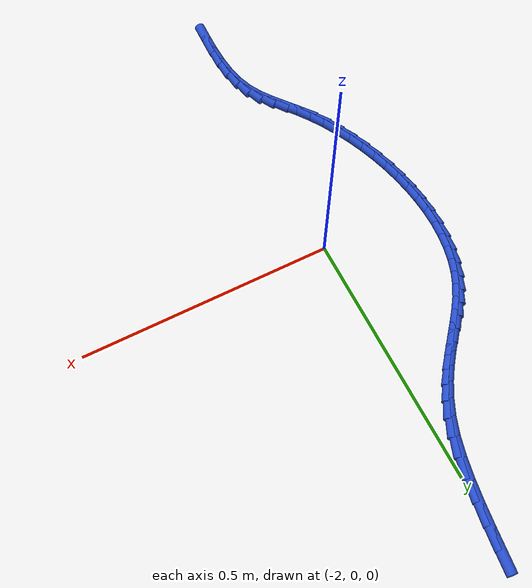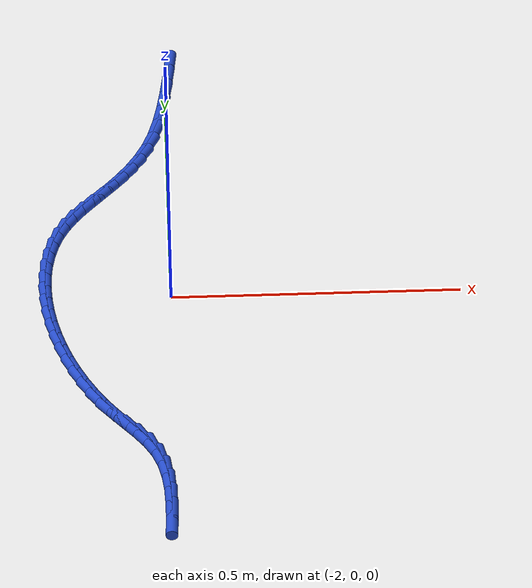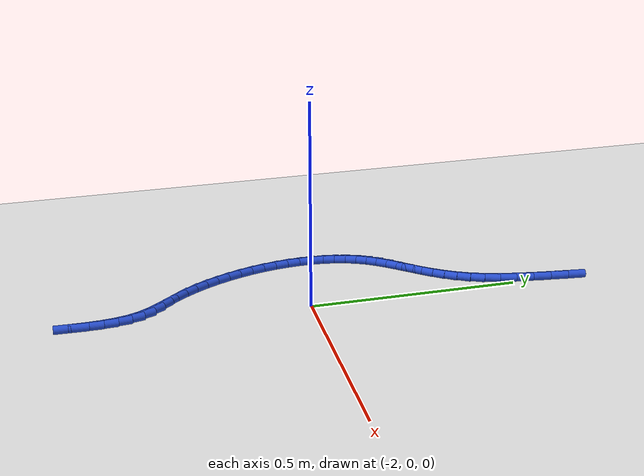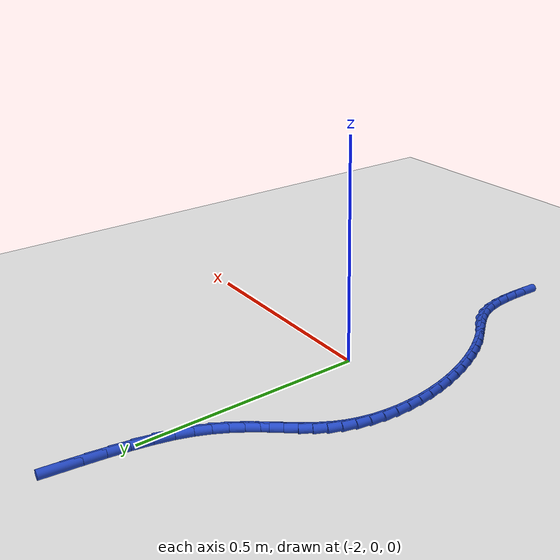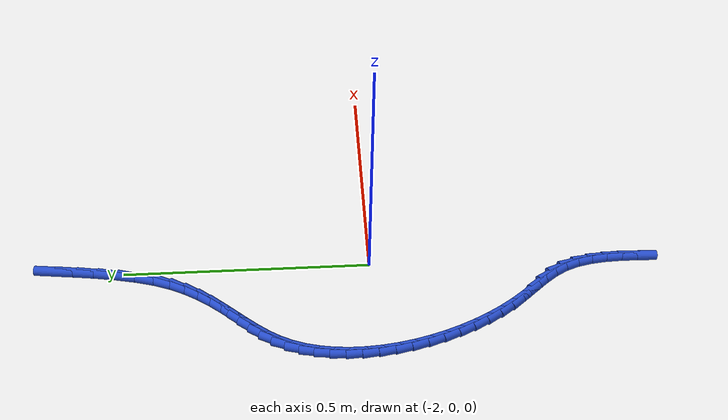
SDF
<sdf version="1.6">
 <world name="default">
  <model name="ground_plane">
   <static>1</static>
   <link name="link">
    <collision name="collision">
     <geometry><plane><normal>0 0 1</normal><size>100 100</size></plane></geometry>
     <surface><friction><ode><mu>100</mu><mu2>50</mu2></ode></friction></surface>
    </collision>
    <visual name="visual">
     <cast_shadows>0</cast_shadows>
     <geometry><plane><normal>0 0 1</normal><size>100 100</size></plane></geometry>
     <material>
      <script><uri>file://media/materials/scripts/gazebo.material</uri><name>Gazebo/WhiteGlow</name></script>
     </material>
    </visual>
   </link>
  </model>
  <model name="line">
   <link name="link_102">
    <pose>-1.9905995910423677 0.6393069410280278 0.01 0 1.57 1.4605820366852915</pose>
    <collision name="collision">
     <geometry><cylinder><radius>0.01</radius><length>0.08</length></cylinder></geometry>
    </collision>
    <visual name="visual">
     <material>
      <script><name>Gazebo/Blue</name><uri>file://media/materials/scripts/gazebo.material</uri></script>
     </material>
     <geometry><cylinder><radius>0.01</radius><length>0.08</length></cylinder></geometry>
    </visual>
   </link>
   <link name="link_103">
    <pose>-1.995306426203486 0.5967737864644644 0.01 0 1.57 1.4446666506424002</pose>
    <collision name="collision">
     <geometry><cylinder><radius>0.01</radius><length>0.08</length></cylinder></geometry>
    </collision>
    <visual name="visual">
     <material>
      <script><name>Gazebo/Blue</name><uri>file://media/materials/scripts/gazebo.material</uri></script>
     </material>
     <geometry><cylinder><radius>0.01</radius><length>0.08</length></cylinder></geometry>
    </visual>
   </link>
   <link name="link_104">
    <pose>-2.0007367771054243 0.5539486252482262 0.01 0 1.57 1.416670662012935</pose>
    <collision name="collision">
     <geometry><cylinder><radius>0.01</radius><length>0.08</length></cylinder></geometry>
    </collision>
    <visual name="visual">
     <material>
      <script><name>Gazebo/Blue</name><uri>file://media/materials/scripts/gazebo.material</uri></script>
     </material>
     <geometry><cylinder><radius>0.01</radius><length>0.08</length></cylinder></geometry>
    </visual>
   </link>
   <link name="link_105">
    <pose>-2.007282978929513 0.511812325876151 0.01 0 1.57 1.3743258674602057</pose>
    <collision name="collision">
     <geometry><cylinder><radius>0.01</radius><length>0.08</length></cylinder></geometry>
    </collision>
    <visual name="visual">
     <material>
      <script><name>Gazebo/Blue</name><uri>file://media/materials/scripts/gazebo.material</uri></script>
     </material>
     <geometry><cylinder><radius>0.01</radius><length>0.08</length></cylinder></geometry>
    </visual>
   </link>
   <link name="link_106">
    <pose>-2.015337366857081 0.47134575684507535 0.01 0 1.57 1.3133900582813482</pose>
    <collision name="collision">
     <geometry><cylinder><radius>0.01</radius><length>0.08</length></cylinder></geometry>
    </collision>
    <visual name="visual">
     <material>
      <script><name>Gazebo/Blue</name><uri>file://media/materials/scripts/gazebo.material</uri></script>
     </material>
     <geometry><cylinder><radius>0.01</radius><length>0.08</length></cylinder></geometry>
    </visual>
   </link>
   <link name="link_107">
    <pose>-2.0252922760694574 0.43352978665183756 0.01 0 1.57 1.228367231004638</pose>
    <collision name="collision">
     <geometry><cylinder><radius>0.01</radius><length>0.08</length></cylinder></geometry>
    </collision>
    <visual name="visual">
     <material>
      <script><name>Gazebo/Blue</name><uri>file://media/materials/scripts/gazebo.material</uri></script>
     </material>
     <geometry><cylinder><radius>0.01</radius><length>0.08</length></cylinder></geometry>
    </visual>
   </link>
   <link name="link_108">
    <pose>-2.0375019896902393 0.39927827750984257 0.01 0 1.57 1.1335278598114342</pose>
    <collision name="collision">
     <geometry><cylinder><radius>0.01</radius><length>0.08</length></cylinder></geometry>
    </collision>
    <visual name="visual">
     <material>
      <script><name>Gazebo/Blue</name><uri>file://media/materials/scripts/gazebo.material</uri></script>
     </material>
     <geometry><cylinder><radius>0.01</radius><length>0.08</length></cylinder></geometry>
    </visual>
   </link>
   <link name="link_109">
    <pose>-2.0518263736472595 0.368634467000668 0.01 0 1.57 1.0467177001737313</pose>
    <collision name="collision">
     <geometry><cylinder><radius>0.01</radius><length>0.08</length></cylinder></geometry>
    </collision>
    <visual name="visual">
     <material>
      <script><name>Gazebo/Blue</name><uri>file://media/materials/scripts/gazebo.material</uri></script>
     </material>
     <geometry><cylinder><radius>0.01</radius><length>0.08</length></cylinder></geometry>
    </visual>
   </link>
   <link name="link_110">
    <pose>-2.067779716604559 0.34103306193343297 0.01 0 1.57 0.973714620342271</pose>
    <collision name="collision">
     <geometry><cylinder><radius>0.01</radius><length>0.08</length></cylinder></geometry>
    </collision>
    <visual name="visual">
     <material>
      <script><name>Gazebo/Blue</name><uri>file://media/materials/scripts/gazebo.material</uri></script>
     </material>
     <geometry><cylinder><radius>0.01</radius><length>0.08</length></cylinder></geometry>
    </visual>
   </link>
   <link name="link_111">
    <pose>-2.0848692254175347 0.3158962986831871 0.01 0 1.57 0.9192113612939791</pose>
    <collision name="collision">
     <geometry><cylinder><radius>0.01</radius><length>0.08</length></cylinder></geometry>
    </collision>
    <visual name="visual">
     <material>
      <script><name>Gazebo/Blue</name><uri>file://media/materials/scripts/gazebo.material</uri></script>
     </material>
     <geometry><cylinder><radius>0.01</radius><length>0.08</length></cylinder></geometry>
    </visual>
   </link>
   <link name="link_112">
    <pose>-2.102602106941586 0.29264641362497995 0.01 0 1.57 0.886928268180433</pose>
    <collision name="collision">
     <geometry><cylinder><radius>0.01</radius><length>0.08</length></cylinder></geometry>
    </collision>
    <visual name="visual">
     <material>
      <script><name>Gazebo/Blue</name><uri>file://media/materials/scripts/gazebo.material</uri></script>
     </material>
     <geometry><cylinder><radius>0.01</radius><length>0.08</length></cylinder></geometry>
    </visual>
   </link>
   <link name="link_113">
    <pose>-2.1204855680321106 0.27070564313386114 0.01 0 1.57 0.8797778065302724</pose>
    <collision name="collision">
     <geometry><cylinder><radius>0.01</radius><length>0.08</length></cylinder></geometry>
    </collision>
    <visual name="visual">
     <material>
      <script><name>Gazebo/Blue</name><uri>file://media/materials/scripts/gazebo.material</uri></script>
     </material>
     <geometry><cylinder><radius>0.01</radius><length>0.08</length></cylinder></geometry>
    </visual>
   </link>
   <link name="link_114">
    <pose>-2.1380268155445075 0.24949622358488016 0.01 0 1.57 0.9000769107864405</pose>
    <collision name="collision">
     <geometry><cylinder><radius>0.01</radius><length>0.08</length></cylinder></geometry>
    </collision>
    <visual name="visual">
     <material>
      <script><name>Gazebo/Blue</name><uri>file://media/materials/scripts/gazebo.material</uri></script>
     </material>
     <geometry><cylinder><radius>0.01</radius><length>0.08</length></cylinder></geometry>
    </visual>
   </link>
   <link name="link_115">
    <pose>-2.1547330563341736 0.22844039135308655 0.01 0 1.57 0.9494509500427459</pose>
    <collision name="collision">
     <geometry><cylinder><radius>0.01</radius><length>0.08</length></cylinder></geometry>
    </collision>
    <visual name="visual">
     <material>
      <script><name>Gazebo/Blue</name><uri>file://media/materials/scripts/gazebo.material</uri></script>
     </material>
     <geometry><cylinder><radius>0.01</radius><length>0.08</length></cylinder></geometry>
    </visual>
   </link>
   <link name="link_116">
    <pose>-2.170111497256507 0.20696038281353 0.01 0 1.57 1.0281336452601615</pose>
    <collision name="collision">
     <geometry><cylinder><radius>0.01</radius><length>0.08</length></cylinder></geometry>
    </collision>
    <visual name="visual">
     <material>
      <script><name>Gazebo/Blue</name><uri>file://media/materials/scripts/gazebo.material</uri></script>
     </material>
     <geometry><cylinder><radius>0.01</radius><length>0.08</length></cylinder></geometry>
    </visual>
   </link>
   <link name="link_117">
    <pose>-2.1836693451669067 0.1844784343412599 0.01 0 1.57 1.131927011865839</pose>
    <collision name="collision">
     <geometry><cylinder><radius>0.01</radius><length>0.08</length></cylinder></geometry>
    </collision>
    <visual name="visual">
     <material>
      <script><name>Gazebo/Blue</name><uri>file://media/materials/scripts/gazebo.material</uri></script>
     </material>
     <geometry><cylinder><radius>0.01</radius><length>0.08</length></cylinder></geometry>
    </visual>
   </link>
   <link name="link_118">
    <pose>-2.1949442073430836 0.1604587012623896 0.01 0 1.57 1.237951272816772</pose>
    <collision name="collision">
     <geometry><cylinder><radius>0.01</radius><length>0.08</length></cylinder></geometry>
    </collision>
    <visual name="visual">
     <material>
      <script><name>Gazebo/Blue</name><uri>file://media/materials/scripts/gazebo.material</uri></script>
     </material>
     <geometry><cylinder><radius>0.01</radius><length>0.08</length></cylinder></geometry>
    </visual>
   </link>
   <link name="link_119">
    <pose>-2.2038063056748367 0.1348239790989967 0.01 0 1.57 1.3340598303471094</pose>
    <collision name="collision">
     <geometry><cylinder><radius>0.01</radius><length>0.08</length></cylinder></geometry>
    </collision>
    <visual name="visual">
     <material>
      <script><name>Gazebo/Blue</name><uri>file://media/materials/scripts/gazebo.material</uri></script>
     </material>
     <geometry><cylinder><radius>0.01</radius><length>0.08</length></cylinder></geometry>
    </visual>
   </link>
   <link name="link_120">
    <pose>-2.2103309755930294 0.10777989314446197 0.01 0 1.57 1.4209008148650475</pose>
    <collision name="collision">
     <geometry><cylinder><radius>0.01</radius><length>0.08</length></cylinder></geometry>
    </collision>
    <visual name="visual">
     <material>
      <script><name>Gazebo/Blue</name><uri>file://media/materials/scripts/gazebo.material</uri></script>
     </material>
     <geometry><cylinder><radius>0.01</radius><length>0.08</length></cylinder></geometry>
    </visual>
   </link>
   <link name="link_121">
    <pose>-2.2145965694823992 0.07953622875088065 0.01 0 1.57 1.4995989232370954</pose>
    <collision name="collision">
     <geometry><cylinder><radius>0.01</radius><length>0.08</length></cylinder></geometry>
    </collision>
    <visual name="visual">
     <material>
      <script><name>Gazebo/Blue</name><uri>file://media/materials/scripts/gazebo.material</uri></script>
     </material>
     <geometry><cylinder><radius>0.01</radius><length>0.08</length></cylinder></geometry>
    </visual>
   </link>
   <link name="link_122">
    <pose>-2.216681439727683 0.050302771270349364 0.01 0 1.57 -1.5702132214468005</pose>
    <collision name="collision">
     <geometry><cylinder><radius>0.01</radius><length>0.08</length></cylinder></geometry>
    </collision>
    <visual name="visual">
     <material>
      <script><name>Gazebo/Blue</name><uri>file://media/materials/scripts/gazebo.material</uri></script>
     </material>
     <geometry><cylinder><radius>0.01</radius><length>0.08</length></cylinder></geometry>
    </visual>
   </link>
   <link name="link_123">
    <pose>-2.2166639387136176 0.020289306054964245 0.01 0 1.57 -1.5041432867156055</pose>
    <collision name="collision">
     <geometry><cylinder><radius>0.01</radius><length>0.08</length></cylinder></geometry>
    </collision>
    <visual name="visual">
     <material>
      <script><name>Gazebo/Blue</name><uri>file://media/materials/scripts/gazebo.material</uri></script>
     </material>
     <geometry><cylinder><radius>0.01</radius><length>0.08</length></cylinder></geometry>
    </visual>
   </link>
   <link name="link_124">
    <pose>-2.2146224188249413 -0.010294381543178603 0.01 0 1.57 -1.4426512346912022</pose>
    <collision name="collision">
     <geometry><cylinder><radius>0.01</radius><length>0.08</length></cylinder></geometry>
    </collision>
    <visual name="visual">
     <material>
      <script><name>Gazebo/Blue</name><uri>file://media/materials/scripts/gazebo.material</uri></script>
     </material>
     <geometry><cylinder><radius>0.01</radius><length>0.08</length></cylinder></geometry>
    </visual>
   </link>
   <link name="link_125">
    <pose>-2.210635232446391 -0.04123850617198292 0.01 0 1.57 -1.3846957193438645</pose>
    <collision name="collision">
     <geometry><cylinder><radius>0.01</radius><length>0.08</length></cylinder></geometry>
    </collision>
    <visual name="visual">
     <material>
      <script><name>Gazebo/Blue</name><uri>file://media/materials/scripts/gazebo.material</uri></script>
     </material>
     <geometry><cylinder><radius>0.01</radius><length>0.08</length></cylinder></geometry>
    </visual>
   </link>
   <link name="link_126">
    <pose>-2.2047807319627046 -0.0723332824793527 0.01 0 1.57 -1.329321767386854</pose>
    <collision name="collision">
     <geometry><cylinder><radius>0.01</radius><length>0.08</length></cylinder></geometry>
    </collision>
    <visual name="visual">
     <material>
      <script><name>Gazebo/Blue</name><uri>file://media/materials/scripts/gazebo.material</uri></script>
     </material>
     <geometry><cylinder><radius>0.01</radius><length>0.08</length></cylinder></geometry>
    </visual>
   </link>
   <link name="link_127">
    <pose>-2.1971372697586187 -0.10336892511319162 0.01 0 1.57 -1.2756444768956208</pose>
    <collision name="collision">
     <geometry><cylinder><radius>0.01</radius><length>0.08</length></cylinder></geometry>
    </collision>
    <visual name="visual">
     <material>
      <script><name>Gazebo/Blue</name><uri>file://media/materials/scripts/gazebo.material</uri></script>
     </material>
     <geometry><cylinder><radius>0.01</radius><length>0.08</length></cylinder></geometry>
    </visual>
   </link>
   <link name="link_128">
    <pose>-2.1877831982188707 -0.13413564872140363 0.01 0 1.57 -1.2228273720351566</pose>
    <collision name="collision">
     <geometry><cylinder><radius>0.01</radius><length>0.08</length></cylinder></geometry>
    </collision>
    <visual name="visual">
     <material>
      <script><name>Gazebo/Blue</name><uri>file://media/materials/scripts/gazebo.material</uri></script>
     </material>
     <geometry><cylinder><radius>0.01</radius><length>0.08</length></cylinder></geometry>
    </visual>
   </link>
   <link name="link_129">
    <pose>-2.1767968697281983 -0.1644236679518926 0.01 0 1.57 -1.1700584578016373</pose>
    <collision name="collision">
     <geometry><cylinder><radius>0.01</radius><length>0.08</length></cylinder></geometry>
    </collision>
    <visual name="visual">
     <material>
      <script><name>Gazebo/Blue</name><uri>file://media/materials/scripts/gazebo.material</uri></script>
     </material>
     <geometry><cylinder><radius>0.01</radius><length>0.08</length></cylinder></geometry>
    </visual>
   </link>
   <link name="link_130">
    <pose>-2.1642566366713383 -0.19402319745256225 0.01 0 1.57 -1.1165253673505413</pose>
    <collision name="collision">
     <geometry><cylinder><radius>0.01</radius><length>0.08</length></cylinder></geometry>
    </collision>
    <visual name="visual">
     <material>
      <script><name>Gazebo/Blue</name><uri>file://media/materials/scripts/gazebo.material</uri></script>
     </material>
     <geometry><cylinder><radius>0.01</radius><length>0.08</length></cylinder></geometry>
    </visual>
   </link>
   <link name="link_131">
    <pose>-2.1502408514330287 -0.2227244518713166 0.01 0 1.57 -1.0613902453052413</pose>
    <collision name="collision">
     <geometry><cylinder><radius>0.01</radius><length>0.08</length></cylinder></geometry>
    </collision>
    <visual name="visual">
     <material>
      <script><name>Gazebo/Blue</name><uri>file://media/materials/scripts/gazebo.material</uri></script>
     </material>
     <geometry><cylinder><radius>0.01</radius><length>0.08</length></cylinder></geometry>
    </visual>
   </link>
   <link name="link_132">
    <pose>-2.1348278663980063 -0.25031764585605937 0.01 0 1.57 -1.0037649573028369</pose>
    <collision name="collision">
     <geometry><cylinder><radius>0.01</radius><length>0.08</length></cylinder></geometry>
    </collision>
    <visual name="visual">
     <material>
      <script><name>Gazebo/Blue</name><uri>file://media/materials/scripts/gazebo.material</uri></script>
     </material>
     <geometry><cylinder><radius>0.01</radius><length>0.08</length></cylinder></geometry>
    </visual>
   </link>
   <link name="link_133">
    <pose>-2.118096033951009 -0.27659299405469445 0.01 0 1.57 -0.9427351675379074</pose>
    <collision name="collision">
     <geometry><cylinder><radius>0.01</radius><length>0.08</length></cylinder></geometry>
    </collision>
    <visual name="visual">
     <material>
      <script><name>Gazebo/Blue</name><uri>file://media/materials/scripts/gazebo.material</uri></script>
     </material>
     <geometry><cylinder><radius>0.01</radius><length>0.08</length></cylinder></geometry>
    </visual>
   </link>
   <link name="link_134">
    <pose>-2.100124729245594 -0.30134176527975354 0.01 0 1.57 -0.8924369129637635</pose>
    <collision name="collision">
     <geometry><cylinder><radius>0.01</radius><length>0.08</length></cylinder></geometry>
    </collision>
    <visual name="visual">
     <material>
      <script><name>Gazebo/Blue</name><uri>file://media/materials/scripts/gazebo.material</uri></script>
     </material>
     <geometry><cylinder><radius>0.01</radius><length>0.08</length></cylinder></geometry>
    </visual>
   </link>
   <link name="link_135">
    <pose>-2.081312149888969 -0.32468383765070236 0.01 0 1.57 -0.890542702993201</pose>
    <collision name="collision">
     <geometry><cylinder><radius>0.01</radius><length>0.08</length></cylinder></geometry>
    </collision>
    <visual name="visual">
     <material>
      <script><name>Gazebo/Blue</name><uri>file://media/materials/scripts/gazebo.material</uri></script>
     </material>
     <geometry><cylinder><radius>0.01</radius><length>0.08</length></cylinder></geometry>
    </visual>
   </link>
   <link name="link_136">
    <pose>-2.0628259790037733 -0.34753219560378557 0.01 0 1.57 -0.9456142238978228</pose>
    <collision name="collision">
     <geometry><cylinder><radius>0.01</radius><length>0.08</length></cylinder></geometry>
    </collision>
    <visual name="visual">
     <material>
      <script><name>Gazebo/Blue</name><uri>file://media/materials/scripts/gazebo.material</uri></script>
     </material>
     <geometry><cylinder><radius>0.01</radius><length>0.08</length></cylinder></geometry>
    </visual>
   </link>
   <link name="link_137">
    <pose>-2.0459476689915803 -0.3709170852156152 0.01 0 1.57 -1.0598180620923958</pose>
    <collision name="collision">
     <geometry><cylinder><radius>0.01</radius><length>0.08</length></cylinder></geometry>
    </collision>
    <visual name="visual">
     <material>
      <script><name>Gazebo/Blue</name><uri>file://media/materials/scripts/gazebo.material</uri></script>
     </material>
     <geometry><cylinder><radius>0.01</radius><length>0.08</length></cylinder></geometry>
    </visual>
   </link>
   <link name="link_138">
    <pose>-2.0319586722539635 -0.3958687525628036 0.01 0 1.57 -1.2169294083839697</pose>
    <collision name="collision">
     <geometry><cylinder><radius>0.01</radius><length>0.08</length></cylinder></geometry>
    </collision>
    <visual name="visual">
     <material>
      <script><name>Gazebo/Blue</name><uri>file://media/materials/scripts/gazebo.material</uri></script>
     </material>
     <geometry><cylinder><radius>0.01</radius><length>0.08</length></cylinder></geometry>
    </visual>
   </link>
   <link name="link_139">
    <pose>-2.021861416577997 -0.4232017094993173 0.01 0 1.57 -1.3536979858628326</pose>
    <collision name="collision">
     <geometry><cylinder><radius>0.01</radius><length>0.08</length></cylinder></geometry>
    </collision>
    <visual name="visual">
     <material>
      <script><name>Gazebo/Blue</name><uri>file://media/materials/scripts/gazebo.material</uri></script>
     </material>
     <geometry><cylinder><radius>0.01</radius><length>0.08</length></cylinder></geometry>
    </visual>
   </link>
   <link name="link_140">
    <pose>-2.0153505745516638 -0.4527193472229968 0.01 0 1.57 -1.4555580521612126</pose>
    <collision name="collision">
     <geometry><cylinder><radius>0.01</radius><length>0.08</length></cylinder></geometry>
    </collision>
    <visual name="visual">
     <material>
      <script><name>Gazebo/Blue</name><uri>file://media/materials/scripts/gazebo.material</uri></script>
     </material>
     <geometry><cylinder><radius>0.01</radius><length>0.08</length></cylinder></geometry>
    </visual>
   </link>
   <link name="link_141">
    <pose>-2.011738012960047 -0.48392908192438344 0.01 0 1.57 -1.5275497291985518</pose>
    <collision name="collision">
     <geometry><cylinder><radius>0.01</radius><length>0.08</length></cylinder></geometry>
    </collision>
    <visual name="visual">
     <material>
      <script><name>Gazebo/Blue</name><uri>file://media/materials/scripts/gazebo.material</uri></script>
     </material>
     <geometry><cylinder><radius>0.01</radius><length>0.08</length></cylinder></geometry>
    </visual>
   </link>
   <link name="link_142">
    <pose>-2.010335550433137 -0.5163382925618133 0.01 0 1.57 1.567189175771121</pose>
    <collision name="collision">
     <geometry><cylinder><radius>0.01</radius><length>0.08</length></cylinder></geometry>
    </collision>
    <visual name="visual">
     <material>
      <script><name>Gazebo/Blue</name><uri>file://media/materials/scripts/gazebo.material</uri></script>
     </material>
     <geometry><cylinder><radius>0.01</radius><length>0.08</length></cylinder></geometry>
    </visual>
   </link>
   <link name="link_143">
    <pose>-2.0104550056009223 -0.5494543580936222 0.01 0 1.57 1.54220577175337</pose>
    <collision name="collision">
     <geometry><cylinder><radius>0.01</radius><length>0.08</length></cylinder></geometry>
    </collision>
    <visual name="visual">
     <material>
      <script><name>Gazebo/Blue</name><uri>file://media/materials/scripts/gazebo.material</uri></script>
     </material>
     <geometry><cylinder><radius>0.01</radius><length>0.08</length></cylinder></geometry>
    </visual>
   </link>
  </model>
 </world>
</sdf>
